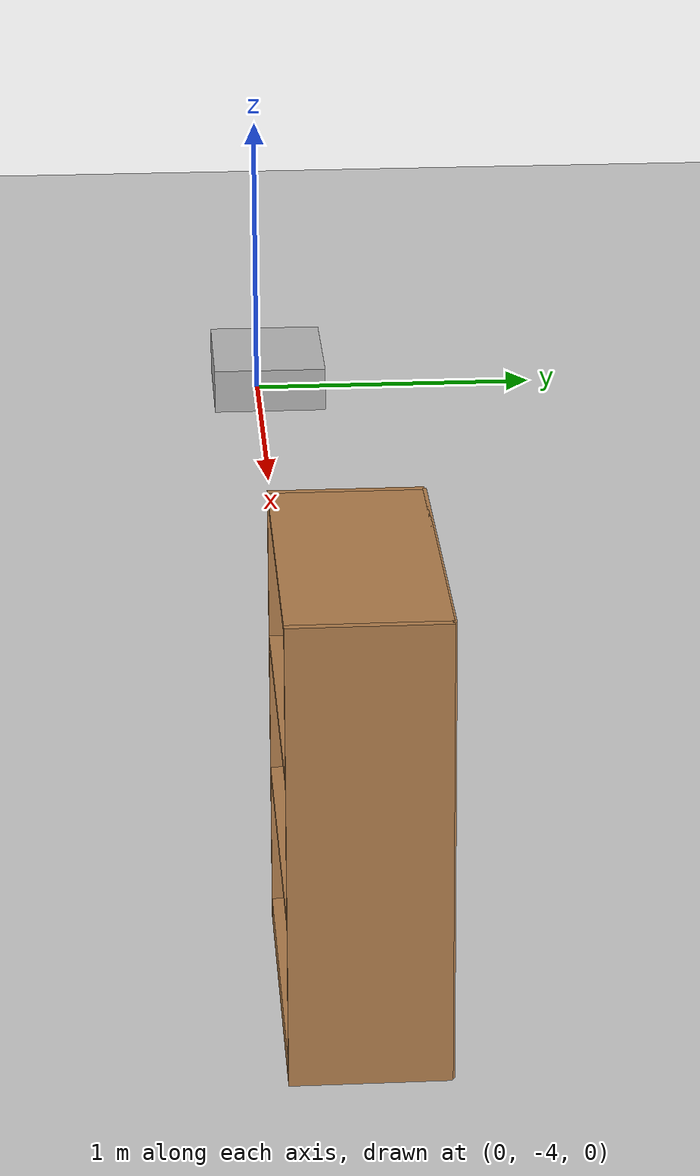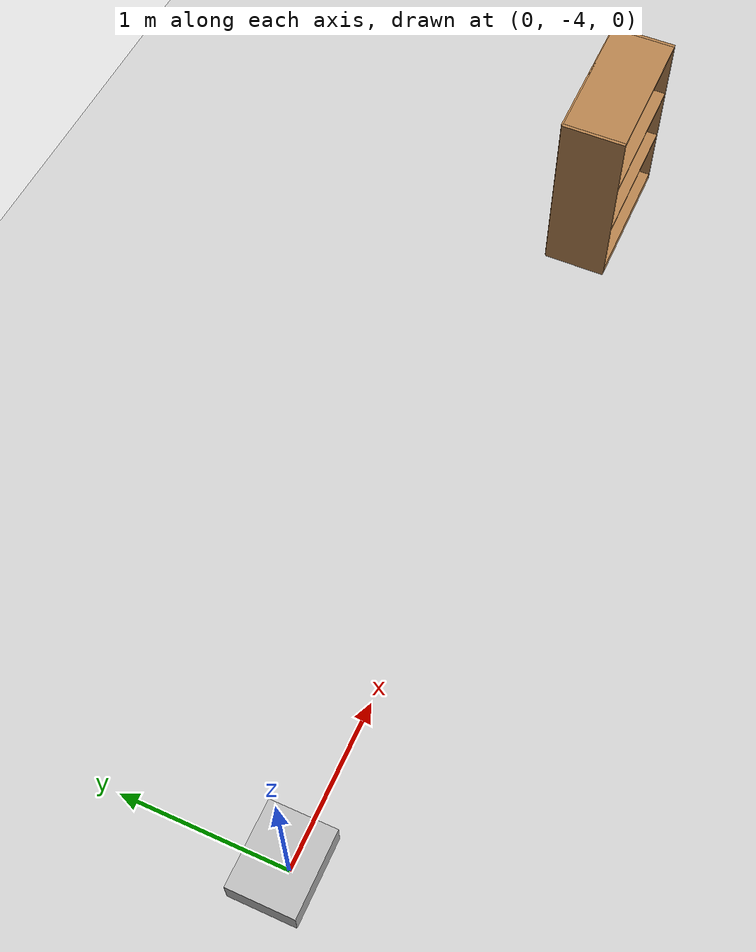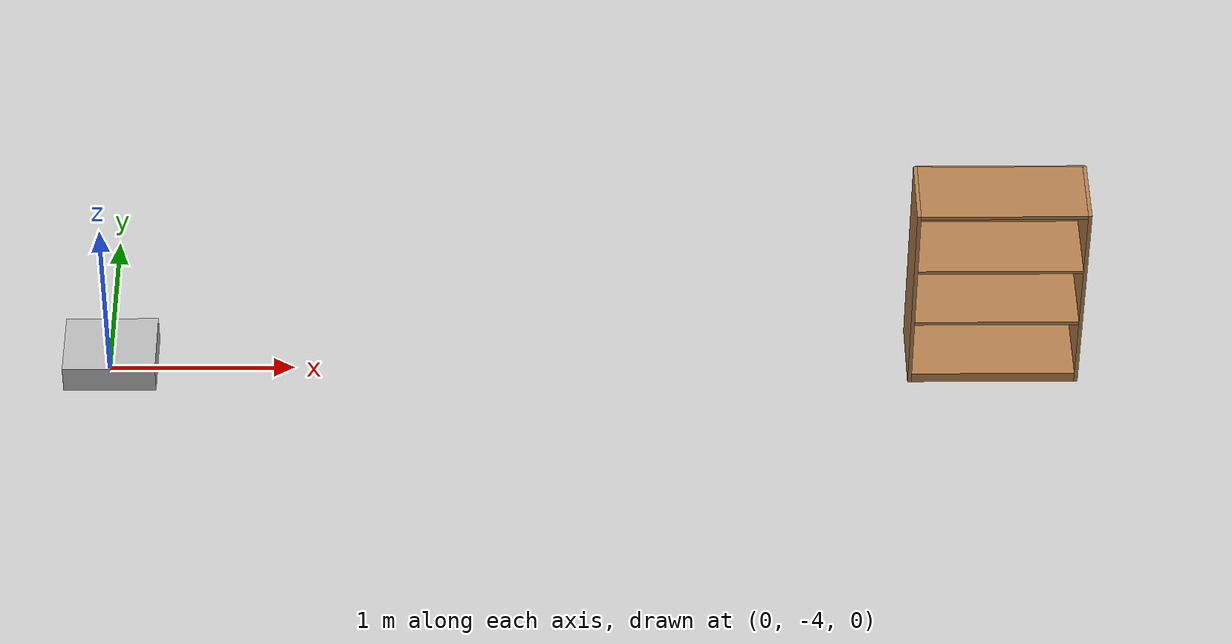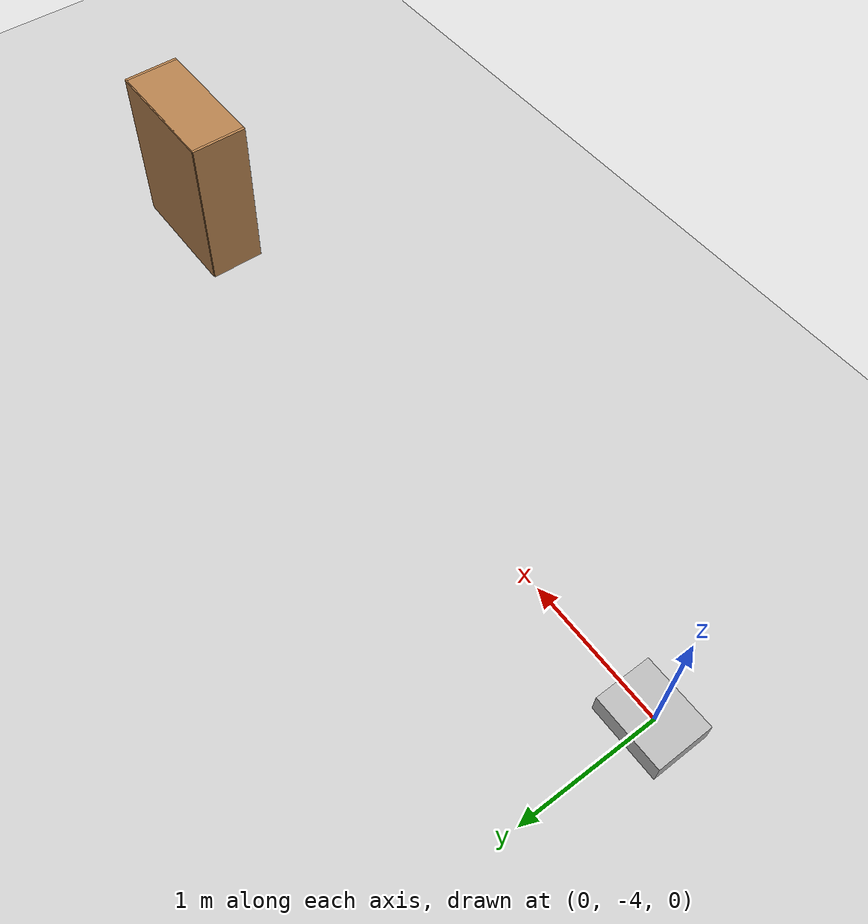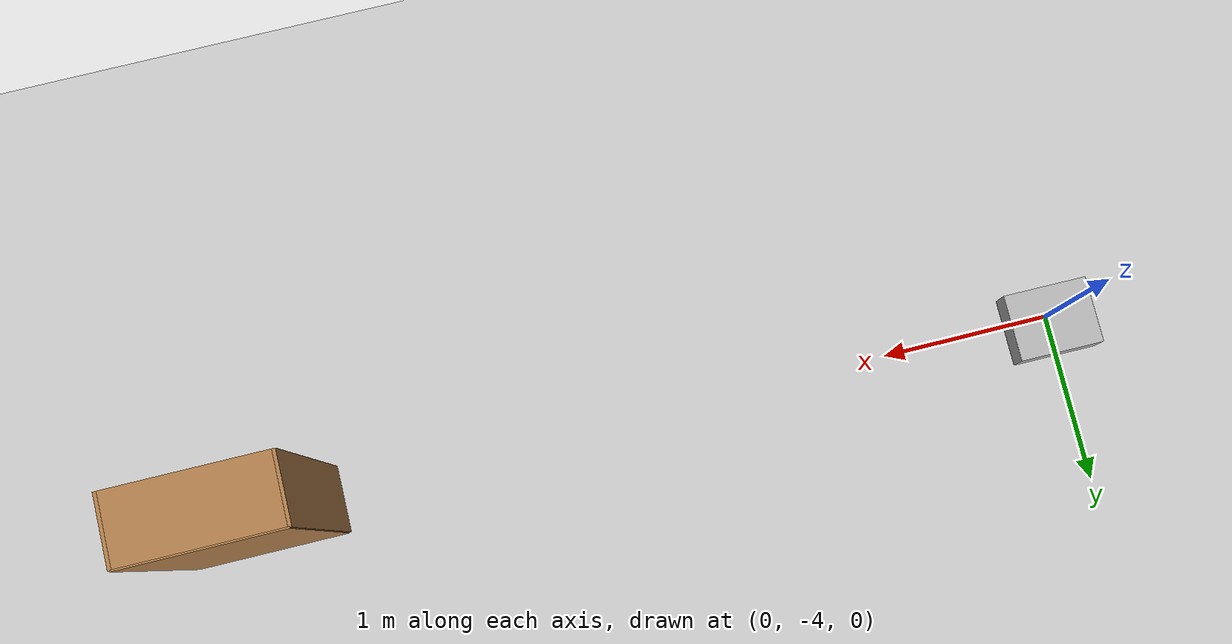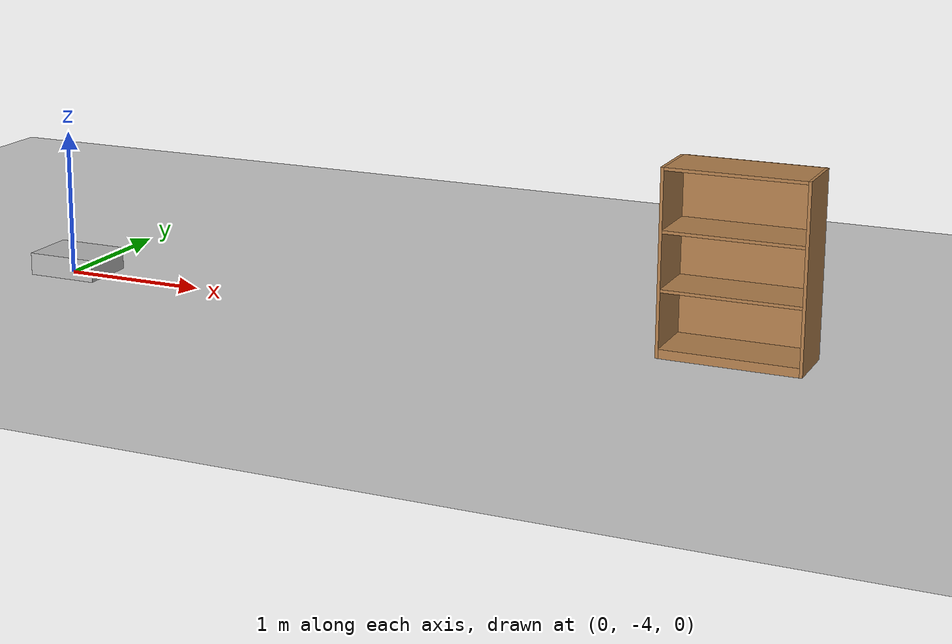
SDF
<sdf version="1.6">
 <world name="default">
  <model name="ground_plane">
   <static>1</static>
   <link name="link">
    <collision name="collision">
     <geometry><plane><normal>0 0 1</normal><size>100 100</size></plane></geometry>
     <surface><friction><ode><mu>100</mu><mu2>50</mu2></ode></friction></surface>
    </collision>
    <visual name="visual">
     <cast_shadows>0</cast_shadows>
     <geometry><plane><normal>0 0 1</normal><size>100 100</size></plane></geometry>
     <material>
      <script><uri>file://media/materials/scripts/gazebo.material</uri><name>Gazebo/Grey</name></script>
     </material>
    </visual>
   </link>
  </model>
  <model name="bookshelf">
   <static>1</static>
   <link name="link">
    <inertial><mass>1</mass></inertial>
    <collision name="back">
     <pose>0 0.005 0.6 0 -0 0</pose>
     <geometry><box><size>0.9 0.01 1.2</size></box></geometry>
    </collision>
    <visual name="visual1">
     <pose>0 0.005 0.6 0 -0 0</pose>
     <geometry><box><size>0.9 0.01 1.2</size></box></geometry>
     <material>
      <script><uri>file://media/materials/scripts/gazebo.material</uri><name>Gazebo/Wood</name></script>
     </material>
    </visual>
    <collision name="left_side">
     <pose>0.45 -0.195 0.6 0 -0 0</pose>
     <geometry><box><size>0.02 0.4 1.2</size></box></geometry>
    </collision>
    <visual name="visual2">
     <pose>0.45 -0.195 0.6 0 -0 0</pose>
     <geometry><box><size>0.02 0.4 1.2</size></box></geometry>
     <material>
      <script><uri>file://media/materials/scripts/gazebo.material</uri><name>Gazebo/Wood</name></script>
     </material>
    </visual>
    <collision name="right_side">
     <pose>-0.45 -0.195 0.6 0 -0 0</pose>
     <geometry><box><size>0.02 0.4 1.2</size></box></geometry>
    </collision>
    <visual name="visual3">
     <pose>-0.45 -0.195 0.6 0 -0 0</pose>
     <geometry><box><size>0.02 0.4 1.2</size></box></geometry>
     <material>
      <script><uri>file://media/materials/scripts/gazebo.material</uri><name>Gazebo/Wood</name></script>
     </material>
    </visual>
    <collision name="bottom">
     <pose>0 -0.195 0.03 0 -0 0</pose>
     <geometry><box><size>0.88 0.4 0.06</size></box></geometry>
    </collision>
    <visual name="visual4">
     <pose>0 -0.195 0.03 0 -0 0</pose>
     <geometry><box><size>0.88 0.4 0.06</size></box></geometry>
     <material>
      <script><uri>file://media/materials/scripts/gazebo.material</uri><name>Gazebo/Wood</name></script>
     </material>
    </visual>
    <collision name="top">
     <pose>0 -0.195 1.19 0 -0 0</pose>
     <geometry><box><size>0.88 0.4 0.02</size></box></geometry>
    </collision>
    <visual name="visual5">
     <pose>0 -0.195 1.19 0 -0 0</pose>
     <geometry><box><size>0.88 0.4 0.02</size></box></geometry>
     <material>
      <script><uri>file://media/materials/scripts/gazebo.material</uri><name>Gazebo/Wood</name></script>
     </material>
    </visual>
    <collision name="low_shelf">
     <pose>0 -0.195 0.43 0 -0 0</pose>
     <geometry><box><size>0.88 0.4 0.02</size></box></geometry>
    </collision>
    <visual name="visual6">
     <pose>0 -0.195 0.43 0 -0 0</pose>
     <geometry><box><size>0.88 0.4 0.02</size></box></geometry>
     <material>
      <script><uri>file://media/materials/scripts/gazebo.material</uri><name>Gazebo/Wood</name></script>
     </material>
    </visual>
    <collision name="high_shelf">
     <pose>0 -0.195 0.8 0 -0 0</pose>
     <geometry><box><size>0.88 0.4 0.02</size></box></geometry>
    </collision>
    <visual name="visual7">
     <pose>0 -0.195 0.8 0 -0 0</pose>
     <geometry><box><size>0.88 0.4 0.02</size></box></geometry>
     <material>
      <script><uri>file://media/materials/scripts/gazebo.material</uri><name>Gazebo/Wood</name></script>
     </material>
    </visual>
   </link>
   <pose>4.78412 -3.73836 0 0 -0 0</pose>
  </model>
  <model name="cardboard_box_1">
   <pose>0.006438 -3.96264 0.149 0 -0 0</pose>
   <link name="link">
    <inertial>
     <mass>2</mass>
     <inertia>
      <ixx>0.0416667</ixx>
      <ixy>0</ixy>
      <ixz>0</ixz>
      <iyy>0.0566667</iyy>
      <iyz>0</iyz>
      <izz>0.0683333</izz>
     </inertia>
    </inertial>
    <collision name="collision">
     <geometry><box><size>0.5 0.4 0.3</size></box></geometry>
     <surface>
      <friction><ode><mu>1</mu><mu2>1</mu2></ode></friction>
      <contact><ode><kp>1e+07</kp><kd>1</kd><min_depth>0.001</min_depth><max_vel>0.1</max_vel></ode></contact>
     </surface>
    </collision>
    <visual name="visual">
     <pose>0 0 -0.15 0 -0 0</pose>
     <geometry><box><size>0.5 0.4 0.3</size></box></geometry>
    </visual>
   </link>
  </model>
 </world>
</sdf>
